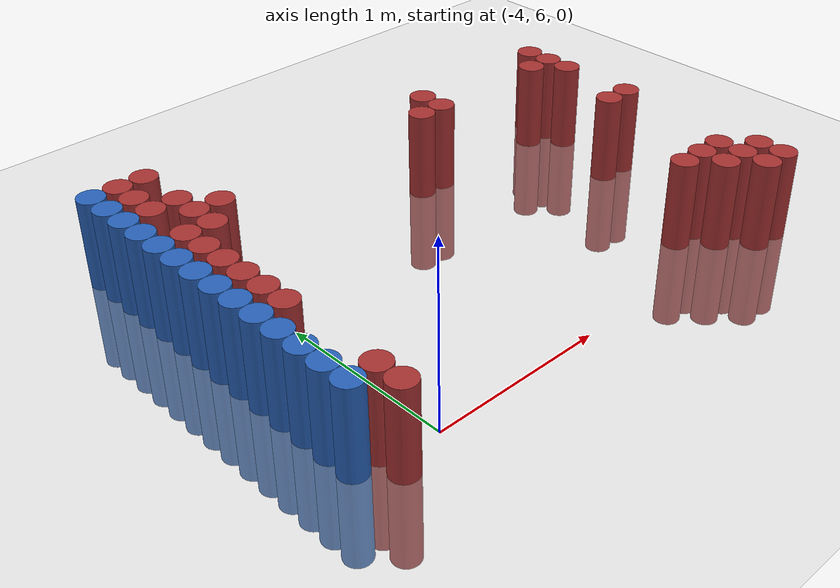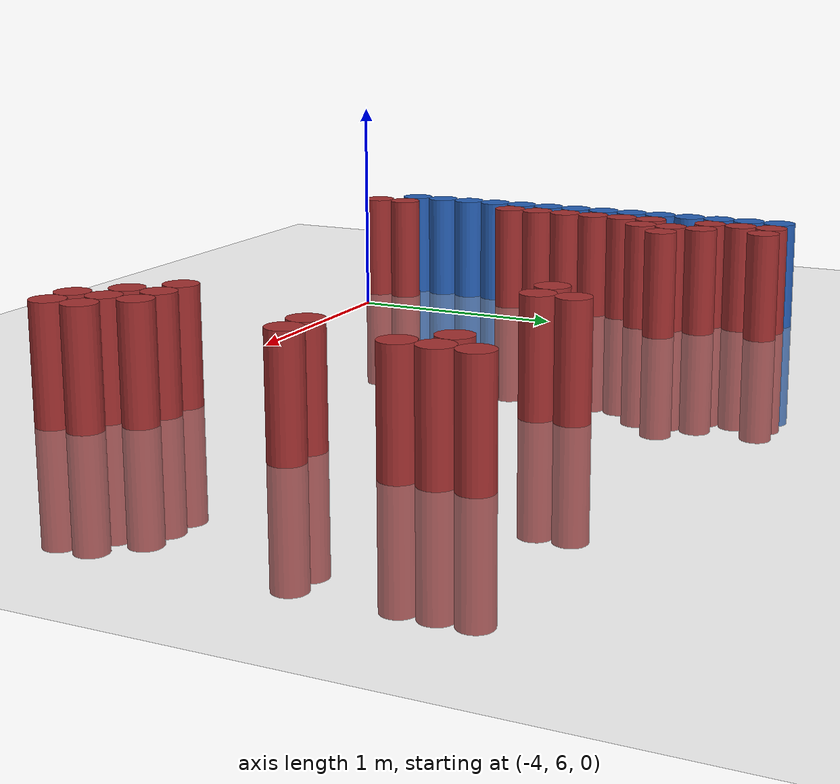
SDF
<sdf version="1.6">
 <world name="default">
  <model name="ground_plane">
   <static>1</static>
   <link name="link">
    <collision name="collision">
     <geometry><plane><normal>0 0 1</normal><size>100 100</size></plane></geometry>
     <surface><friction><ode><mu>100</mu><mu2>50</mu2></ode></friction></surface>
    </collision>
    <visual name="visual">
     <cast_shadows>0</cast_shadows>
     <geometry><plane><normal>0 0 1</normal><size>100 100</size></plane></geometry>
     <material>
      <script><uri>file://media/materials/scripts/gazebo.material</uri><name>Gazebo/Grey</name></script>
     </material>
    </visual>
   </link>
  </model>
  <model name="unit_cylinder_102">
   <static>1</static>
   <pose>-4.425000 6.075000 0.000000 0.000000 0.000000 0.000000</pose>
   <link name="link">
    <inertial>
     <mass>1</mass>
     <inertia><ixx>0.145833</ixx><ixy>0</ixy><ixz>0</ixz><iyy>0.145833</iyy><iyz>0</iyz><izz>0.125</izz></inertia>
    </inertial>
    <collision name="collision">
     <geometry><cylinder><radius>0.075000</radius><length>1</length></cylinder></geometry>
    </collision>
    <visual name="visual">
     <geometry><cylinder><radius>0.075000</radius><length>1</length></cylinder></geometry>
     <material>
      <ambient>0.152000 0.379000 0.720000 1</ambient>
      <diffuse>0.152000 0.379000 0.720000 1</diffuse>
     </material>
     <material>
      <script><name>Gazebo/Grey</name><uri>file://media/materials/scripts/gazebo.material</uri></script>
     </material>
    </visual>
   </link>
  </model>
  <model name="unit_cylinder_103">
   <static>1</static>
   <pose>-4.425000 6.225000 0.000000 0.000000 0.000000 0.000000</pose>
   <link name="link">
    <inertial>
     <mass>1</mass>
     <inertia><ixx>0.145833</ixx><ixy>0</ixy><ixz>0</ixz><iyy>0.145833</iyy><iyz>0</iyz><izz>0.125</izz></inertia>
    </inertial>
    <collision name="collision">
     <geometry><cylinder><radius>0.075000</radius><length>1</length></cylinder></geometry>
    </collision>
    <visual name="visual">
     <geometry><cylinder><radius>0.075000</radius><length>1</length></cylinder></geometry>
     <material>
      <ambient>0.152000 0.379000 0.720000 1</ambient>
      <diffuse>0.152000 0.379000 0.720000 1</diffuse>
     </material>
     <material>
      <script><name>Gazebo/Grey</name><uri>file://media/materials/scripts/gazebo.material</uri></script>
     </material>
    </visual>
   </link>
  </model>
  <model name="unit_cylinder_104">
   <static>1</static>
   <pose>-4.425000 6.375000 0.000000 0.000000 0.000000 0.000000</pose>
   <link name="link">
    <inertial>
     <mass>1</mass>
     <inertia><ixx>0.145833</ixx><ixy>0</ixy><ixz>0</ixz><iyy>0.145833</iyy><iyz>0</iyz><izz>0.125</izz></inertia>
    </inertial>
    <collision name="collision">
     <geometry><cylinder><radius>0.075000</radius><length>1</length></cylinder></geometry>
    </collision>
    <visual name="visual">
     <geometry><cylinder><radius>0.075000</radius><length>1</length></cylinder></geometry>
     <material>
      <ambient>0.152000 0.379000 0.720000 1</ambient>
      <diffuse>0.152000 0.379000 0.720000 1</diffuse>
     </material>
     <material>
      <script><name>Gazebo/Grey</name><uri>file://media/materials/scripts/gazebo.material</uri></script>
     </material>
    </visual>
   </link>
  </model>
  <model name="unit_cylinder_105">
   <static>1</static>
   <pose>-4.425000 6.525000 0.000000 0.000000 0.000000 0.000000</pose>
   <link name="link">
    <inertial>
     <mass>1</mass>
     <inertia><ixx>0.145833</ixx><ixy>0</ixy><ixz>0</ixz><iyy>0.145833</iyy><iyz>0</iyz><izz>0.125</izz></inertia>
    </inertial>
    <collision name="collision">
     <geometry><cylinder><radius>0.075000</radius><length>1</length></cylinder></geometry>
    </collision>
    <visual name="visual">
     <geometry><cylinder><radius>0.075000</radius><length>1</length></cylinder></geometry>
     <material>
      <ambient>0.152000 0.379000 0.720000 1</ambient>
      <diffuse>0.152000 0.379000 0.720000 1</diffuse>
     </material>
     <material>
      <script><name>Gazebo/Grey</name><uri>file://media/materials/scripts/gazebo.material</uri></script>
     </material>
    </visual>
   </link>
  </model>
  <model name="unit_cylinder_106">
   <static>1</static>
   <pose>-4.425000 6.675000 0.000000 0.000000 0.000000 0.000000</pose>
   <link name="link">
    <inertial>
     <mass>1</mass>
     <inertia><ixx>0.145833</ixx><ixy>0</ixy><ixz>0</ixz><iyy>0.145833</iyy><iyz>0</iyz><izz>0.125</izz></inertia>
    </inertial>
    <collision name="collision">
     <geometry><cylinder><radius>0.075000</radius><length>1</length></cylinder></geometry>
    </collision>
    <visual name="visual">
     <geometry><cylinder><radius>0.075000</radius><length>1</length></cylinder></geometry>
     <material>
      <ambient>0.152000 0.379000 0.720000 1</ambient>
      <diffuse>0.152000 0.379000 0.720000 1</diffuse>
     </material>
     <material>
      <script><name>Gazebo/Grey</name><uri>file://media/materials/scripts/gazebo.material</uri></script>
     </material>
    </visual>
   </link>
  </model>
  <model name="unit_cylinder_107">
   <static>1</static>
   <pose>-4.425000 6.825000 0.000000 0.000000 0.000000 0.000000</pose>
   <link name="link">
    <inertial>
     <mass>1</mass>
     <inertia><ixx>0.145833</ixx><ixy>0</ixy><ixz>0</ixz><iyy>0.145833</iyy><iyz>0</iyz><izz>0.125</izz></inertia>
    </inertial>
    <collision name="collision">
     <geometry><cylinder><radius>0.075000</radius><length>1</length></cylinder></geometry>
    </collision>
    <visual name="visual">
     <geometry><cylinder><radius>0.075000</radius><length>1</length></cylinder></geometry>
     <material>
      <ambient>0.152000 0.379000 0.720000 1</ambient>
      <diffuse>0.152000 0.379000 0.720000 1</diffuse>
     </material>
     <material>
      <script><name>Gazebo/Grey</name><uri>file://media/materials/scripts/gazebo.material</uri></script>
     </material>
    </visual>
   </link>
  </model>
  <model name="unit_cylinder_108">
   <static>1</static>
   <pose>-4.425000 6.975000 0.000000 0.000000 0.000000 0.000000</pose>
   <link name="link">
    <inertial>
     <mass>1</mass>
     <inertia><ixx>0.145833</ixx><ixy>0</ixy><ixz>0</ixz><iyy>0.145833</iyy><iyz>0</iyz><izz>0.125</izz></inertia>
    </inertial>
    <collision name="collision">
     <geometry><cylinder><radius>0.075000</radius><length>1</length></cylinder></geometry>
    </collision>
    <visual name="visual">
     <geometry><cylinder><radius>0.075000</radius><length>1</length></cylinder></geometry>
     <material>
      <ambient>0.152000 0.379000 0.720000 1</ambient>
      <diffuse>0.152000 0.379000 0.720000 1</diffuse>
     </material>
     <material>
      <script><name>Gazebo/Grey</name><uri>file://media/materials/scripts/gazebo.material</uri></script>
     </material>
    </visual>
   </link>
  </model>
  <model name="unit_cylinder_109">
   <static>1</static>
   <pose>-4.425000 7.125000 0.000000 0.000000 0.000000 0.000000</pose>
   <link name="link">
    <inertial>
     <mass>1</mass>
     <inertia><ixx>0.145833</ixx><ixy>0</ixy><ixz>0</ixz><iyy>0.145833</iyy><iyz>0</iyz><izz>0.125</izz></inertia>
    </inertial>
    <collision name="collision">
     <geometry><cylinder><radius>0.075000</radius><length>1</length></cylinder></geometry>
    </collision>
    <visual name="visual">
     <geometry><cylinder><radius>0.075000</radius><length>1</length></cylinder></geometry>
     <material>
      <ambient>0.152000 0.379000 0.720000 1</ambient>
      <diffuse>0.152000 0.379000 0.720000 1</diffuse>
     </material>
     <material>
      <script><name>Gazebo/Grey</name><uri>file://media/materials/scripts/gazebo.material</uri></script>
     </material>
    </visual>
   </link>
  </model>
  <model name="unit_cylinder_110">
   <static>1</static>
   <pose>-4.425000 7.275000 0.000000 0.000000 0.000000 0.000000</pose>
   <link name="link">
    <inertial>
     <mass>1</mass>
     <inertia><ixx>0.145833</ixx><ixy>0</ixy><ixz>0</ixz><iyy>0.145833</iyy><iyz>0</iyz><izz>0.125</izz></inertia>
    </inertial>
    <collision name="collision">
     <geometry><cylinder><radius>0.075000</radius><length>1</length></cylinder></geometry>
    </collision>
    <visual name="visual">
     <geometry><cylinder><radius>0.075000</radius><length>1</length></cylinder></geometry>
     <material>
      <ambient>0.152000 0.379000 0.720000 1</ambient>
      <diffuse>0.152000 0.379000 0.720000 1</diffuse>
     </material>
     <material>
      <script><name>Gazebo/Grey</name><uri>file://media/materials/scripts/gazebo.material</uri></script>
     </material>
    </visual>
   </link>
  </model>
  <model name="unit_cylinder_111">
   <static>1</static>
   <pose>-4.425000 7.425000 0.000000 0.000000 0.000000 0.000000</pose>
   <link name="link">
    <inertial>
     <mass>1</mass>
     <inertia><ixx>0.145833</ixx><ixy>0</ixy><ixz>0</ixz><iyy>0.145833</iyy><iyz>0</iyz><izz>0.125</izz></inertia>
    </inertial>
    <collision name="collision">
     <geometry><cylinder><radius>0.075000</radius><length>1</length></cylinder></geometry>
    </collision>
    <visual name="visual">
     <geometry><cylinder><radius>0.075000</radius><length>1</length></cylinder></geometry>
     <material>
      <ambient>0.152000 0.379000 0.720000 1</ambient>
      <diffuse>0.152000 0.379000 0.720000 1</diffuse>
     </material>
     <material>
      <script><name>Gazebo/Grey</name><uri>file://media/materials/scripts/gazebo.material</uri></script>
     </material>
    </visual>
   </link>
  </model>
  <model name="unit_cylinder_112">
   <static>1</static>
   <pose>-4.425000 7.575000 0.000000 0.000000 0.000000 0.000000</pose>
   <link name="link">
    <inertial>
     <mass>1</mass>
     <inertia><ixx>0.145833</ixx><ixy>0</ixy><ixz>0</ixz><iyy>0.145833</iyy><iyz>0</iyz><izz>0.125</izz></inertia>
    </inertial>
    <collision name="collision">
     <geometry><cylinder><radius>0.075000</radius><length>1</length></cylinder></geometry>
    </collision>
    <visual name="visual">
     <geometry><cylinder><radius>0.075000</radius><length>1</length></cylinder></geometry>
     <material>
      <ambient>0.152000 0.379000 0.720000 1</ambient>
      <diffuse>0.152000 0.379000 0.720000 1</diffuse>
     </material>
     <material>
      <script><name>Gazebo/Grey</name><uri>file://media/materials/scripts/gazebo.material</uri></script>
     </material>
    </visual>
   </link>
  </model>
  <model name="unit_cylinder_113">
   <static>1</static>
   <pose>-4.425000 7.725000 0.000000 0.000000 0.000000 0.000000</pose>
   <link name="link">
    <inertial>
     <mass>1</mass>
     <inertia><ixx>0.145833</ixx><ixy>0</ixy><ixz>0</ixz><iyy>0.145833</iyy><iyz>0</iyz><izz>0.125</izz></inertia>
    </inertial>
    <collision name="collision">
     <geometry><cylinder><radius>0.075000</radius><length>1</length></cylinder></geometry>
    </collision>
    <visual name="visual">
     <geometry><cylinder><radius>0.075000</radius><length>1</length></cylinder></geometry>
     <material>
      <ambient>0.152000 0.379000 0.720000 1</ambient>
      <diffuse>0.152000 0.379000 0.720000 1</diffuse>
     </material>
     <material>
      <script><name>Gazebo/Grey</name><uri>file://media/materials/scripts/gazebo.material</uri></script>
     </material>
    </visual>
   </link>
  </model>
  <model name="unit_cylinder_114">
   <static>1</static>
   <pose>-4.425000 7.875000 0.000000 0.000000 0.000000 0.000000</pose>
   <link name="link">
    <inertial>
     <mass>1</mass>
     <inertia><ixx>0.145833</ixx><ixy>0</ixy><ixz>0</ixz><iyy>0.145833</iyy><iyz>0</iyz><izz>0.125</izz></inertia>
    </inertial>
    <collision name="collision">
     <geometry><cylinder><radius>0.075000</radius><length>1</length></cylinder></geometry>
    </collision>
    <visual name="visual">
     <geometry><cylinder><radius>0.075000</radius><length>1</length></cylinder></geometry>
     <material>
      <ambient>0.152000 0.379000 0.720000 1</ambient>
      <diffuse>0.152000 0.379000 0.720000 1</diffuse>
     </material>
     <material>
      <script><name>Gazebo/Grey</name><uri>file://media/materials/scripts/gazebo.material</uri></script>
     </material>
    </visual>
   </link>
  </model>
  <model name="unit_cylinder_115">
   <static>1</static>
   <pose>-4.425000 8.025000 0.000000 0.000000 0.000000 0.000000</pose>
   <link name="link">
    <inertial>
     <mass>1</mass>
     <inertia><ixx>0.145833</ixx><ixy>0</ixy><ixz>0</ixz><iyy>0.145833</iyy><iyz>0</iyz><izz>0.125</izz></inertia>
    </inertial>
    <collision name="collision">
     <geometry><cylinder><radius>0.075000</radius><length>1</length></cylinder></geometry>
    </collision>
    <visual name="visual">
     <geometry><cylinder><radius>0.075000</radius><length>1</length></cylinder></geometry>
     <material>
      <ambient>0.152000 0.379000 0.720000 1</ambient>
      <diffuse>0.152000 0.379000 0.720000 1</diffuse>
     </material>
     <material>
      <script><name>Gazebo/Grey</name><uri>file://media/materials/scripts/gazebo.material</uri></script>
     </material>
    </visual>
   </link>
  </model>
  <model name="unit_cylinder_129">
   <static>1</static>
   <pose>-4.275000 5.925000 0.000000 0.000000 0.000000 0.000000</pose>
   <link name="link">
    <inertial>
     <mass>1</mass>
     <inertia><ixx>0.145833</ixx><ixy>0</ixy><ixz>0</ixz><iyy>0.145833</iyy><iyz>0</iyz><izz>0.125</izz></inertia>
    </inertial>
    <collision name="collision">
     <geometry><cylinder><radius>0.075000</radius><length>1</length></cylinder></geometry>
    </collision>
    <visual name="visual">
     <geometry><cylinder><radius>0.075000</radius><length>1</length></cylinder></geometry>
     <material>
      <ambient>0.648000 0.192000 0.192000 1</ambient>
      <diffuse>0.648000 0.192000 0.192000 1</diffuse>
     </material>
     <material>
      <script><name>Gazebo/Grey</name><uri>file://media/materials/scripts/gazebo.material</uri></script>
     </material>
    </visual>
   </link>
  </model>
  <model name="unit_cylinder_130">
   <static>1</static>
   <pose>-4.275000 6.075000 0.000000 0.000000 0.000000 0.000000</pose>
   <link name="link">
    <inertial>
     <mass>1</mass>
     <inertia><ixx>0.145833</ixx><ixy>0</ixy><ixz>0</ixz><iyy>0.145833</iyy><iyz>0</iyz><izz>0.125</izz></inertia>
    </inertial>
    <collision name="collision">
     <geometry><cylinder><radius>0.075000</radius><length>1</length></cylinder></geometry>
    </collision>
    <visual name="visual">
     <geometry><cylinder><radius>0.075000</radius><length>1</length></cylinder></geometry>
     <material>
      <ambient>0.648000 0.192000 0.192000 1</ambient>
      <diffuse>0.648000 0.192000 0.192000 1</diffuse>
     </material>
     <material>
      <script><name>Gazebo/Grey</name><uri>file://media/materials/scripts/gazebo.material</uri></script>
     </material>
    </visual>
   </link>
  </model>
  <model name="unit_cylinder_131">
   <static>1</static>
   <pose>-4.275000 6.675000 0.000000 0.000000 0.000000 0.000000</pose>
   <link name="link">
    <inertial>
     <mass>1</mass>
     <inertia><ixx>0.145833</ixx><ixy>0</ixy><ixz>0</ixz><iyy>0.145833</iyy><iyz>0</iyz><izz>0.125</izz></inertia>
    </inertial>
    <collision name="collision">
     <geometry><cylinder><radius>0.075000</radius><length>1</length></cylinder></geometry>
    </collision>
    <visual name="visual">
     <geometry><cylinder><radius>0.075000</radius><length>1</length></cylinder></geometry>
     <material>
      <ambient>0.648000 0.192000 0.192000 1</ambient>
      <diffuse>0.648000 0.192000 0.192000 1</diffuse>
     </material>
     <material>
      <script><name>Gazebo/Grey</name><uri>file://media/materials/scripts/gazebo.material</uri></script>
     </material>
    </visual>
   </link>
  </model>
  <model name="unit_cylinder_132">
   <static>1</static>
   <pose>-4.275000 6.825000 0.000000 0.000000 0.000000 0.000000</pose>
   <link name="link">
    <inertial>
     <mass>1</mass>
     <inertia><ixx>0.145833</ixx><ixy>0</ixy><ixz>0</ixz><iyy>0.145833</iyy><iyz>0</iyz><izz>0.125</izz></inertia>
    </inertial>
    <collision name="collision">
     <geometry><cylinder><radius>0.075000</radius><length>1</length></cylinder></geometry>
    </collision>
    <visual name="visual">
     <geometry><cylinder><radius>0.075000</radius><length>1</length></cylinder></geometry>
     <material>
      <ambient>0.648000 0.192000 0.192000 1</ambient>
      <diffuse>0.648000 0.192000 0.192000 1</diffuse>
     </material>
     <material>
      <script><name>Gazebo/Grey</name><uri>file://media/materials/scripts/gazebo.material</uri></script>
     </material>
    </visual>
   </link>
  </model>
  <model name="unit_cylinder_133">
   <static>1</static>
   <pose>-4.275000 6.975000 0.000000 0.000000 0.000000 0.000000</pose>
   <link name="link">
    <inertial>
     <mass>1</mass>
     <inertia><ixx>0.145833</ixx><ixy>0</ixy><ixz>0</ixz><iyy>0.145833</iyy><iyz>0</iyz><izz>0.125</izz></inertia>
    </inertial>
    <collision name="collision">
     <geometry><cylinder><radius>0.075000</radius><length>1</length></cylinder></geometry>
    </collision>
    <visual name="visual">
     <geometry><cylinder><radius>0.075000</radius><length>1</length></cylinder></geometry>
     <material>
      <ambient>0.648000 0.192000 0.192000 1</ambient>
      <diffuse>0.648000 0.192000 0.192000 1</diffuse>
     </material>
     <material>
      <script><name>Gazebo/Grey</name><uri>file://media/materials/scripts/gazebo.material</uri></script>
     </material>
    </visual>
   </link>
  </model>
  <model name="unit_cylinder_134">
   <static>1</static>
   <pose>-4.275000 7.125000 0.000000 0.000000 0.000000 0.000000</pose>
   <link name="link">
    <inertial>
     <mass>1</mass>
     <inertia><ixx>0.145833</ixx><ixy>0</ixy><ixz>0</ixz><iyy>0.145833</iyy><iyz>0</iyz><izz>0.125</izz></inertia>
    </inertial>
    <collision name="collision">
     <geometry><cylinder><radius>0.075000</radius><length>1</length></cylinder></geometry>
    </collision>
    <visual name="visual">
     <geometry><cylinder><radius>0.075000</radius><length>1</length></cylinder></geometry>
     <material>
      <ambient>0.648000 0.192000 0.192000 1</ambient>
      <diffuse>0.648000 0.192000 0.192000 1</diffuse>
     </material>
     <material>
      <script><name>Gazebo/Grey</name><uri>file://media/materials/scripts/gazebo.material</uri></script>
     </material>
    </visual>
   </link>
  </model>
  <model name="unit_cylinder_135">
   <static>1</static>
   <pose>-4.275000 7.275000 0.000000 0.000000 0.000000 0.000000</pose>
   <link name="link">
    <inertial>
     <mass>1</mass>
     <inertia><ixx>0.145833</ixx><ixy>0</ixy><ixz>0</ixz><iyy>0.145833</iyy><iyz>0</iyz><izz>0.125</izz></inertia>
    </inertial>
    <collision name="collision">
     <geometry><cylinder><radius>0.075000</radius><length>1</length></cylinder></geometry>
    </collision>
    <visual name="visual">
     <geometry><cylinder><radius>0.075000</radius><length>1</length></cylinder></geometry>
     <material>
      <ambient>0.648000 0.192000 0.192000 1</ambient>
      <diffuse>0.648000 0.192000 0.192000 1</diffuse>
     </material>
     <material>
      <script><name>Gazebo/Grey</name><uri>file://media/materials/scripts/gazebo.material</uri></script>
     </material>
    </visual>
   </link>
  </model>
  <model name="unit_cylinder_136">
   <static>1</static>
   <pose>-4.275000 7.425000 0.000000 0.000000 0.000000 0.000000</pose>
   <link name="link">
    <inertial>
     <mass>1</mass>
     <inertia><ixx>0.145833</ixx><ixy>0</ixy><ixz>0</ixz><iyy>0.145833</iyy><iyz>0</iyz><izz>0.125</izz></inertia>
    </inertial>
    <collision name="collision">
     <geometry><cylinder><radius>0.075000</radius><length>1</length></cylinder></geometry>
    </collision>
    <visual name="visual">
     <geometry><cylinder><radius>0.075000</radius><length>1</length></cylinder></geometry>
     <material>
      <ambient>0.648000 0.192000 0.192000 1</ambient>
      <diffuse>0.648000 0.192000 0.192000 1</diffuse>
     </material>
     <material>
      <script><name>Gazebo/Grey</name><uri>file://media/materials/scripts/gazebo.material</uri></script>
     </material>
    </visual>
   </link>
  </model>
  <model name="unit_cylinder_137">
   <static>1</static>
   <pose>-4.275000 7.725000 0.000000 0.000000 0.000000 0.000000</pose>
   <link name="link">
    <inertial>
     <mass>1</mass>
     <inertia><ixx>0.145833</ixx><ixy>0</ixy><ixz>0</ixz><iyy>0.145833</iyy><iyz>0</iyz><izz>0.125</izz></inertia>
    </inertial>
    <collision name="collision">
     <geometry><cylinder><radius>0.075000</radius><length>1</length></cylinder></geometry>
    </collision>
    <visual name="visual">
     <geometry><cylinder><radius>0.075000</radius><length>1</length></cylinder></geometry>
     <material>
      <ambient>0.648000 0.192000 0.192000 1</ambient>
      <diffuse>0.648000 0.192000 0.192000 1</diffuse>
     </material>
     <material>
      <script><name>Gazebo/Grey</name><uri>file://media/materials/scripts/gazebo.material</uri></script>
     </material>
    </visual>
   </link>
  </model>
  <model name="unit_cylinder_138">
   <static>1</static>
   <pose>-4.275000 7.875000 0.000000 0.000000 0.000000 0.000000</pose>
   <link name="link">
    <inertial>
     <mass>1</mass>
     <inertia><ixx>0.145833</ixx><ixy>0</ixy><ixz>0</ixz><iyy>0.145833</iyy><iyz>0</iyz><izz>0.125</izz></inertia>
    </inertial>
    <collision name="collision">
     <geometry><cylinder><radius>0.075000</radius><length>1</length></cylinder></geometry>
    </collision>
    <visual name="visual">
     <geometry><cylinder><radius>0.075000</radius><length>1</length></cylinder></geometry>
     <material>
      <ambient>0.648000 0.192000 0.192000 1</ambient>
      <diffuse>0.648000 0.192000 0.192000 1</diffuse>
     </material>
     <material>
      <script><name>Gazebo/Grey</name><uri>file://media/materials/scripts/gazebo.material</uri></script>
     </material>
    </visual>
   </link>
  </model>
  <model name="unit_cylinder_139">
   <static>1</static>
   <pose>-4.275000 8.025000 0.000000 0.000000 0.000000 0.000000</pose>
   <link name="link">
    <inertial>
     <mass>1</mass>
     <inertia><ixx>0.145833</ixx><ixy>0</ixy><ixz>0</ixz><iyy>0.145833</iyy><iyz>0</iyz><izz>0.125</izz></inertia>
    </inertial>
    <collision name="collision">
     <geometry><cylinder><radius>0.075000</radius><length>1</length></cylinder></geometry>
    </collision>
    <visual name="visual">
     <geometry><cylinder><radius>0.075000</radius><length>1</length></cylinder></geometry>
     <material>
      <ambient>0.648000 0.192000 0.192000 1</ambient>
      <diffuse>0.648000 0.192000 0.192000 1</diffuse>
     </material>
     <material>
      <script><name>Gazebo/Grey</name><uri>file://media/materials/scripts/gazebo.material</uri></script>
     </material>
    </visual>
   </link>
  </model>
  <model name="unit_cylinder_145">
   <static>1</static>
   <pose>-4.125000 7.425000 0.000000 0.000000 0.000000 0.000000</pose>
   <link name="link">
    <inertial>
     <mass>1</mass>
     <inertia><ixx>0.145833</ixx><ixy>0</ixy><ixz>0</ixz><iyy>0.145833</iyy><iyz>0</iyz><izz>0.125</izz></inertia>
    </inertial>
    <collision name="collision">
     <geometry><cylinder><radius>0.075000</radius><length>1</length></cylinder></geometry>
    </collision>
    <visual name="visual">
     <geometry><cylinder><radius>0.075000</radius><length>1</length></cylinder></geometry>
     <material>
      <ambient>0.648000 0.192000 0.192000 1</ambient>
      <diffuse>0.648000 0.192000 0.192000 1</diffuse>
     </material>
     <material>
      <script><name>Gazebo/Grey</name><uri>file://media/materials/scripts/gazebo.material</uri></script>
     </material>
    </visual>
   </link>
  </model>
  <model name="unit_cylinder_146">
   <static>1</static>
   <pose>-4.125000 7.575000 0.000000 0.000000 0.000000 0.000000</pose>
   <link name="link">
    <inertial>
     <mass>1</mass>
     <inertia><ixx>0.145833</ixx><ixy>0</ixy><ixz>0</ixz><iyy>0.145833</iyy><iyz>0</iyz><izz>0.125</izz></inertia>
    </inertial>
    <collision name="collision">
     <geometry><cylinder><radius>0.075000</radius><length>1</length></cylinder></geometry>
    </collision>
    <visual name="visual">
     <geometry><cylinder><radius>0.075000</radius><length>1</length></cylinder></geometry>
     <material>
      <ambient>0.648000 0.192000 0.192000 1</ambient>
      <diffuse>0.648000 0.192000 0.192000 1</diffuse>
     </material>
     <material>
      <script><name>Gazebo/Grey</name><uri>file://media/materials/scripts/gazebo.material</uri></script>
     </material>
    </visual>
   </link>
  </model>
  <model name="unit_cylinder_147">
   <static>1</static>
   <pose>-4.125000 7.725000 0.000000 0.000000 0.000000 0.000000</pose>
   <link name="link">
    <inertial>
     <mass>1</mass>
     <inertia><ixx>0.145833</ixx><ixy>0</ixy><ixz>0</ixz><iyy>0.145833</iyy><iyz>0</iyz><izz>0.125</izz></inertia>
    </inertial>
    <collision name="collision">
     <geometry><cylinder><radius>0.075000</radius><length>1</length></cylinder></geometry>
    </collision>
    <visual name="visual">
     <geometry><cylinder><radius>0.075000</radius><length>1</length></cylinder></geometry>
     <material>
      <ambient>0.648000 0.192000 0.192000 1</ambient>
      <diffuse>0.648000 0.192000 0.192000 1</diffuse>
     </material>
     <material>
      <script><name>Gazebo/Grey</name><uri>file://media/materials/scripts/gazebo.material</uri></script>
     </material>
    </visual>
   </link>
  </model>
  <model name="unit_cylinder_148">
   <static>1</static>
   <pose>-4.125000 8.025000 0.000000 0.000000 0.000000 0.000000</pose>
   <link name="link">
    <inertial>
     <mass>1</mass>
     <inertia><ixx>0.145833</ixx><ixy>0</ixy><ixz>0</ixz><iyy>0.145833</iyy><iyz>0</iyz><izz>0.125</izz></inertia>
    </inertial>
    <collision name="collision">
     <geometry><cylinder><radius>0.075000</radius><length>1</length></cylinder></geometry>
    </collision>
    <visual name="visual">
     <geometry><cylinder><radius>0.075000</radius><length>1</length></cylinder></geometry>
     <material>
      <ambient>0.648000 0.192000 0.192000 1</ambient>
      <diffuse>0.648000 0.192000 0.192000 1</diffuse>
     </material>
     <material>
      <script><name>Gazebo/Grey</name><uri>file://media/materials/scripts/gazebo.material</uri></script>
     </material>
    </visual>
   </link>
  </model>
  <model name="unit_cylinder_153">
   <static>1</static>
   <pose>-3.975000 7.575000 0.000000 0.000000 0.000000 0.000000</pose>
   <link name="link">
    <inertial>
     <mass>1</mass>
     <inertia><ixx>0.145833</ixx><ixy>0</ixy><ixz>0</ixz><iyy>0.145833</iyy><iyz>0</iyz><izz>0.125</izz></inertia>
    </inertial>
    <collision name="collision">
     <geometry><cylinder><radius>0.075000</radius><length>1</length></cylinder></geometry>
    </collision>
    <visual name="visual">
     <geometry><cylinder><radius>0.075000</radius><length>1</length></cylinder></geometry>
     <material>
      <ambient>0.648000 0.192000 0.192000 1</ambient>
      <diffuse>0.648000 0.192000 0.192000 1</diffuse>
     </material>
     <material>
      <script><name>Gazebo/Grey</name><uri>file://media/materials/scripts/gazebo.material</uri></script>
     </material>
    </visual>
   </link>
  </model>
  <model name="unit_cylinder_170">
   <static>1</static>
   <pose>-2.625000 7.575000 0.000000 0.000000 0.000000 0.000000</pose>
   <link name="link">
    <inertial>
     <mass>1</mass>
     <inertia><ixx>0.145833</ixx><ixy>0</ixy><ixz>0</ixz><iyy>0.145833</iyy><iyz>0</iyz><izz>0.125</izz></inertia>
    </inertial>
    <collision name="collision">
     <geometry><cylinder><radius>0.075000</radius><length>1</length></cylinder></geometry>
    </collision>
    <visual name="visual">
     <geometry><cylinder><radius>0.075000</radius><length>1</length></cylinder></geometry>
     <material>
      <ambient>0.648000 0.192000 0.192000 1</ambient>
      <diffuse>0.648000 0.192000 0.192000 1</diffuse>
     </material>
     <material>
      <script><name>Gazebo/Grey</name><uri>file://media/materials/scripts/gazebo.material</uri></script>
     </material>
    </visual>
   </link>
  </model>
  <model name="unit_cylinder_172">
   <static>1</static>
   <pose>-2.475000 7.575000 0.000000 0.000000 0.000000 0.000000</pose>
   <link name="link">
    <inertial>
     <mass>1</mass>
     <inertia><ixx>0.145833</ixx><ixy>0</ixy><ixz>0</ixz><iyy>0.145833</iyy><iyz>0</iyz><izz>0.125</izz></inertia>
    </inertial>
    <collision name="collision">
     <geometry><cylinder><radius>0.075000</radius><length>1</length></cylinder></geometry>
    </collision>
    <visual name="visual">
     <geometry><cylinder><radius>0.075000</radius><length>1</length></cylinder></geometry>
     <material>
      <ambient>0.648000 0.192000 0.192000 1</ambient>
      <diffuse>0.648000 0.192000 0.192000 1</diffuse>
     </material>
     <material>
      <script><name>Gazebo/Grey</name><uri>file://media/materials/scripts/gazebo.material</uri></script>
     </material>
    </visual>
   </link>
  </model>
  <model name="unit_cylinder_173">
   <static>1</static>
   <pose>-2.475000 7.725000 0.000000 0.000000 0.000000 0.000000</pose>
   <link name="link">
    <inertial>
     <mass>1</mass>
     <inertia><ixx>0.145833</ixx><ixy>0</ixy><ixz>0</ixz><iyy>0.145833</iyy><iyz>0</iyz><izz>0.125</izz></inertia>
    </inertial>
    <collision name="collision">
     <geometry><cylinder><radius>0.075000</radius><length>1</length></cylinder></geometry>
    </collision>
    <visual name="visual">
     <geometry><cylinder><radius>0.075000</radius><length>1</length></cylinder></geometry>
     <material>
      <ambient>0.648000 0.192000 0.192000 1</ambient>
      <diffuse>0.648000 0.192000 0.192000 1</diffuse>
     </material>
     <material>
      <script><name>Gazebo/Grey</name><uri>file://media/materials/scripts/gazebo.material</uri></script>
     </material>
    </visual>
   </link>
  </model>
  <model name="unit_cylinder_184">
   <static>1</static>
   <pose>-2.025000 6.225000 0.000000 0.000000 0.000000 0.000000</pose>
   <link name="link">
    <inertial>
     <mass>1</mass>
     <inertia><ixx>0.145833</ixx><ixy>0</ixy><ixz>0</ixz><iyy>0.145833</iyy><iyz>0</iyz><izz>0.125</izz></inertia>
    </inertial>
    <collision name="collision">
     <geometry><cylinder><radius>0.075000</radius><length>1</length></cylinder></geometry>
    </collision>
    <visual name="visual">
     <geometry><cylinder><radius>0.075000</radius><length>1</length></cylinder></geometry>
     <material>
      <ambient>0.648000 0.192000 0.192000 1</ambient>
      <diffuse>0.648000 0.192000 0.192000 1</diffuse>
     </material>
     <material>
      <script><name>Gazebo/Grey</name><uri>file://media/materials/scripts/gazebo.material</uri></script>
     </material>
    </visual>
   </link>
  </model>
  <model name="unit_cylinder_191">
   <static>1</static>
   <pose>-1.875000 6.075000 0.000000 0.000000 0.000000 0.000000</pose>
   <link name="link">
    <inertial>
     <mass>1</mass>
     <inertia><ixx>0.145833</ixx><ixy>0</ixy><ixz>0</ixz><iyy>0.145833</iyy><iyz>0</iyz><izz>0.125</izz></inertia>
    </inertial>
    <collision name="collision">
     <geometry><cylinder><radius>0.075000</radius><length>1</length></cylinder></geometry>
    </collision>
    <visual name="visual">
     <geometry><cylinder><radius>0.075000</radius><length>1</length></cylinder></geometry>
     <material>
      <ambient>0.648000 0.192000 0.192000 1</ambient>
      <diffuse>0.648000 0.192000 0.192000 1</diffuse>
     </material>
     <material>
      <script><name>Gazebo/Grey</name><uri>file://media/materials/scripts/gazebo.material</uri></script>
     </material>
    </visual>
   </link>
  </model>
  <model name="unit_cylinder_192">
   <static>1</static>
   <pose>-1.875000 6.225000 0.000000 0.000000 0.000000 0.000000</pose>
   <link name="link">
    <inertial>
     <mass>1</mass>
     <inertia><ixx>0.145833</ixx><ixy>0</ixy><ixz>0</ixz><iyy>0.145833</iyy><iyz>0</iyz><izz>0.125</izz></inertia>
    </inertial>
    <collision name="collision">
     <geometry><cylinder><radius>0.075000</radius><length>1</length></cylinder></geometry>
    </collision>
    <visual name="visual">
     <geometry><cylinder><radius>0.075000</radius><length>1</length></cylinder></geometry>
     <material>
      <ambient>0.648000 0.192000 0.192000 1</ambient>
      <diffuse>0.648000 0.192000 0.192000 1</diffuse>
     </material>
     <material>
      <script><name>Gazebo/Grey</name><uri>file://media/materials/scripts/gazebo.material</uri></script>
     </material>
    </visual>
   </link>
  </model>
  <model name="unit_cylinder_197">
   <static>1</static>
   <pose>-1.725000 5.925000 0.000000 0.000000 0.000000 0.000000</pose>
   <link name="link">
    <inertial>
     <mass>1</mass>
     <inertia><ixx>0.145833</ixx><ixy>0</ixy><ixz>0</ixz><iyy>0.145833</iyy><iyz>0</iyz><izz>0.125</izz></inertia>
    </inertial>
    <collision name="collision">
     <geometry><cylinder><radius>0.075000</radius><length>1</length></cylinder></geometry>
    </collision>
    <visual name="visual">
     <geometry><cylinder><radius>0.075000</radius><length>1</length></cylinder></geometry>
     <material>
      <ambient>0.648000 0.192000 0.192000 1</ambient>
      <diffuse>0.648000 0.192000 0.192000 1</diffuse>
     </material>
     <material>
      <script><name>Gazebo/Grey</name><uri>file://media/materials/scripts/gazebo.material</uri></script>
     </material>
    </visual>
   </link>
  </model>
  <model name="unit_cylinder_198">
   <static>1</static>
   <pose>-1.725000 6.075000 0.000000 0.000000 0.000000 0.000000</pose>
   <link name="link">
    <inertial>
     <mass>1</mass>
     <inertia><ixx>0.145833</ixx><ixy>0</ixy><ixz>0</ixz><iyy>0.145833</iyy><iyz>0</iyz><izz>0.125</izz></inertia>
    </inertial>
    <collision name="collision">
     <geometry><cylinder><radius>0.075000</radius><length>1</length></cylinder></geometry>
    </collision>
    <visual name="visual">
     <geometry><cylinder><radius>0.075000</radius><length>1</length></cylinder></geometry>
     <material>
      <ambient>0.648000 0.192000 0.192000 1</ambient>
      <diffuse>0.648000 0.192000 0.192000 1</diffuse>
     </material>
     <material>
      <script><name>Gazebo/Grey</name><uri>file://media/materials/scripts/gazebo.material</uri></script>
     </material>
    </visual>
   </link>
  </model>
  <model name="unit_cylinder_199">
   <static>1</static>
   <pose>-1.725000 6.225000 0.000000 0.000000 0.000000 0.000000</pose>
   <link name="link">
    <inertial>
     <mass>1</mass>
     <inertia><ixx>0.145833</ixx><ixy>0</ixy><ixz>0</ixz><iyy>0.145833</iyy><iyz>0</iyz><izz>0.125</izz></inertia>
    </inertial>
    <collision name="collision">
     <geometry><cylinder><radius>0.075000</radius><length>1</length></cylinder></geometry>
    </collision>
    <visual name="visual">
     <geometry><cylinder><radius>0.075000</radius><length>1</length></cylinder></geometry>
     <material>
      <ambient>0.648000 0.192000 0.192000 1</ambient>
      <diffuse>0.648000 0.192000 0.192000 1</diffuse>
     </material>
     <material>
      <script><name>Gazebo/Grey</name><uri>file://media/materials/scripts/gazebo.material</uri></script>
     </material>
    </visual>
   </link>
  </model>
  <model name="unit_cylinder_200">
   <static>1</static>
   <pose>-1.725000 6.975000 0.000000 0.000000 0.000000 0.000000</pose>
   <link name="link">
    <inertial>
     <mass>1</mass>
     <inertia><ixx>0.145833</ixx><ixy>0</ixy><ixz>0</ixz><iyy>0.145833</iyy><iyz>0</iyz><izz>0.125</izz></inertia>
    </inertial>
    <collision name="collision">
     <geometry><cylinder><radius>0.075000</radius><length>1</length></cylinder></geometry>
    </collision>
    <visual name="visual">
     <geometry><cylinder><radius>0.075000</radius><length>1</length></cylinder></geometry>
     <material>
      <ambient>0.648000 0.192000 0.192000 1</ambient>
      <diffuse>0.648000 0.192000 0.192000 1</diffuse>
     </material>
     <material>
      <script><name>Gazebo/Grey</name><uri>file://media/materials/scripts/gazebo.material</uri></script>
     </material>
    </visual>
   </link>
  </model>
  <model name="unit_cylinder_201">
   <static>1</static>
   <pose>-1.725000 7.575000 0.000000 0.000000 0.000000 0.000000</pose>
   <link name="link">
    <inertial>
     <mass>1</mass>
     <inertia><ixx>0.145833</ixx><ixy>0</ixy><ixz>0</ixz><iyy>0.145833</iyy><iyz>0</iyz><izz>0.125</izz></inertia>
    </inertial>
    <collision name="collision">
     <geometry><cylinder><radius>0.075000</radius><length>1</length></cylinder></geometry>
    </collision>
    <visual name="visual">
     <geometry><cylinder><radius>0.075000</radius><length>1</length></cylinder></geometry>
     <material>
      <ambient>0.648000 0.192000 0.192000 1</ambient>
      <diffuse>0.648000 0.192000 0.192000 1</diffuse>
     </material>
     <material>
      <script><name>Gazebo/Grey</name><uri>file://media/materials/scripts/gazebo.material</uri></script>
     </material>
    </visual>
   </link>
  </model>
  <model name="unit_cylinder_209">
   <static>1</static>
   <pose>-1.575000 5.925000 0.000000 0.000000 0.000000 0.000000</pose>
   <link name="link">
    <inertial>
     <mass>1</mass>
     <inertia><ixx>0.145833</ixx><ixy>0</ixy><ixz>0</ixz><iyy>0.145833</iyy><iyz>0</iyz><izz>0.125</izz></inertia>
    </inertial>
    <collision name="collision">
     <geometry><cylinder><radius>0.075000</radius><length>1</length></cylinder></geometry>
    </collision>
    <visual name="visual">
     <geometry><cylinder><radius>0.075000</radius><length>1</length></cylinder></geometry>
     <material>
      <ambient>0.648000 0.192000 0.192000 1</ambient>
      <diffuse>0.648000 0.192000 0.192000 1</diffuse>
     </material>
     <material>
      <script><name>Gazebo/Grey</name><uri>file://media/materials/scripts/gazebo.material</uri></script>
     </material>
    </visual>
   </link>
  </model>
  <model name="unit_cylinder_210">
   <static>1</static>
   <pose>-1.575000 6.075000 0.000000 0.000000 0.000000 0.000000</pose>
   <link name="link">
    <inertial>
     <mass>1</mass>
     <inertia><ixx>0.145833</ixx><ixy>0</ixy><ixz>0</ixz><iyy>0.145833</iyy><iyz>0</iyz><izz>0.125</izz></inertia>
    </inertial>
    <collision name="collision">
     <geometry><cylinder><radius>0.075000</radius><length>1</length></cylinder></geometry>
    </collision>
    <visual name="visual">
     <geometry><cylinder><radius>0.075000</radius><length>1</length></cylinder></geometry>
     <material>
      <ambient>0.648000 0.192000 0.192000 1</ambient>
      <diffuse>0.648000 0.192000 0.192000 1</diffuse>
     </material>
     <material>
      <script><name>Gazebo/Grey</name><uri>file://media/materials/scripts/gazebo.material</uri></script>
     </material>
    </visual>
   </link>
  </model>
  <model name="unit_cylinder_211">
   <static>1</static>
   <pose>-1.575000 6.975000 0.000000 0.000000 0.000000 0.000000</pose>
   <link name="link">
    <inertial>
     <mass>1</mass>
     <inertia><ixx>0.145833</ixx><ixy>0</ixy><ixz>0</ixz><iyy>0.145833</iyy><iyz>0</iyz><izz>0.125</izz></inertia>
    </inertial>
    <collision name="collision">
     <geometry><cylinder><radius>0.075000</radius><length>1</length></cylinder></geometry>
    </collision>
    <visual name="visual">
     <geometry><cylinder><radius>0.075000</radius><length>1</length></cylinder></geometry>
     <material>
      <ambient>0.648000 0.192000 0.192000 1</ambient>
      <diffuse>0.648000 0.192000 0.192000 1</diffuse>
     </material>
     <material>
      <script><name>Gazebo/Grey</name><uri>file://media/materials/scripts/gazebo.material</uri></script>
     </material>
    </visual>
   </link>
  </model>
  <model name="unit_cylinder_212">
   <static>1</static>
   <pose>-1.575000 7.425000 0.000000 0.000000 0.000000 0.000000</pose>
   <link name="link">
    <inertial>
     <mass>1</mass>
     <inertia><ixx>0.145833</ixx><ixy>0</ixy><ixz>0</ixz><iyy>0.145833</iyy><iyz>0</iyz><izz>0.125</izz></inertia>
    </inertial>
    <collision name="collision">
     <geometry><cylinder><radius>0.075000</radius><length>1</length></cylinder></geometry>
    </collision>
    <visual name="visual">
     <geometry><cylinder><radius>0.075000</radius><length>1</length></cylinder></geometry>
     <material>
      <ambient>0.648000 0.192000 0.192000 1</ambient>
      <diffuse>0.648000 0.192000 0.192000 1</diffuse>
     </material>
     <material>
      <script><name>Gazebo/Grey</name><uri>file://media/materials/scripts/gazebo.material</uri></script>
     </material>
    </visual>
   </link>
  </model>
  <model name="unit_cylinder_213">
   <static>1</static>
   <pose>-1.575000 7.575000 0.000000 0.000000 0.000000 0.000000</pose>
   <link name="link">
    <inertial>
     <mass>1</mass>
     <inertia><ixx>0.145833</ixx><ixy>0</ixy><ixz>0</ixz><iyy>0.145833</iyy><iyz>0</iyz><izz>0.125</izz></inertia>
    </inertial>
    <collision name="collision">
     <geometry><cylinder><radius>0.075000</radius><length>1</length></cylinder></geometry>
    </collision>
    <visual name="visual">
     <geometry><cylinder><radius>0.075000</radius><length>1</length></cylinder></geometry>
     <material>
      <ambient>0.648000 0.192000 0.192000 1</ambient>
      <diffuse>0.648000 0.192000 0.192000 1</diffuse>
     </material>
     <material>
      <script><name>Gazebo/Grey</name><uri>file://media/materials/scripts/gazebo.material</uri></script>
     </material>
    </visual>
   </link>
  </model>
  <model name="unit_cylinder_214">
   <static>1</static>
   <pose>-1.575000 7.725000 0.000000 0.000000 0.000000 0.000000</pose>
   <link name="link">
    <inertial>
     <mass>1</mass>
     <inertia><ixx>0.145833</ixx><ixy>0</ixy><ixz>0</ixz><iyy>0.145833</iyy><iyz>0</iyz><izz>0.125</izz></inertia>
    </inertial>
    <collision name="collision">
     <geometry><cylinder><radius>0.075000</radius><length>1</length></cylinder></geometry>
    </collision>
    <visual name="visual">
     <geometry><cylinder><radius>0.075000</radius><length>1</length></cylinder></geometry>
     <material>
      <ambient>0.648000 0.192000 0.192000 1</ambient>
      <diffuse>0.648000 0.192000 0.192000 1</diffuse>
     </material>
     <material>
      <script><name>Gazebo/Grey</name><uri>file://media/materials/scripts/gazebo.material</uri></script>
     </material>
    </visual>
   </link>
  </model>
 </world>
</sdf>
